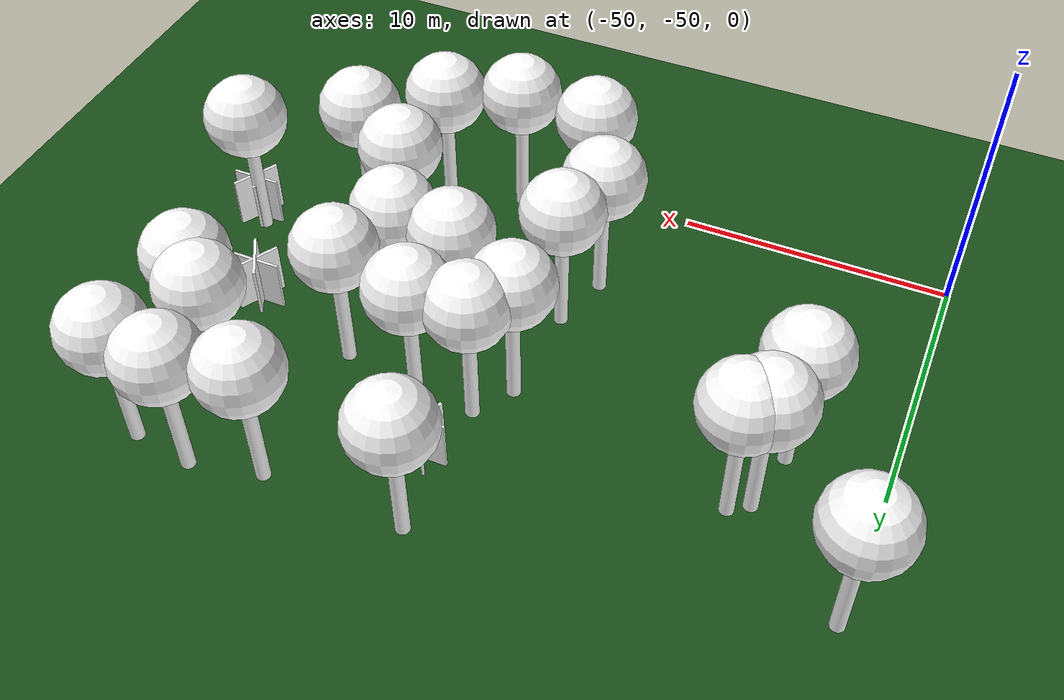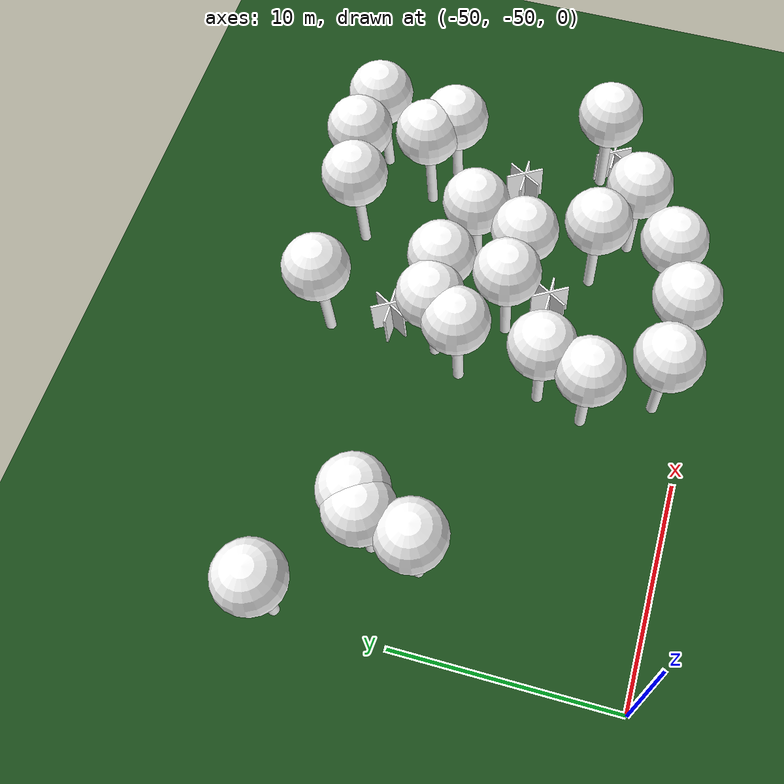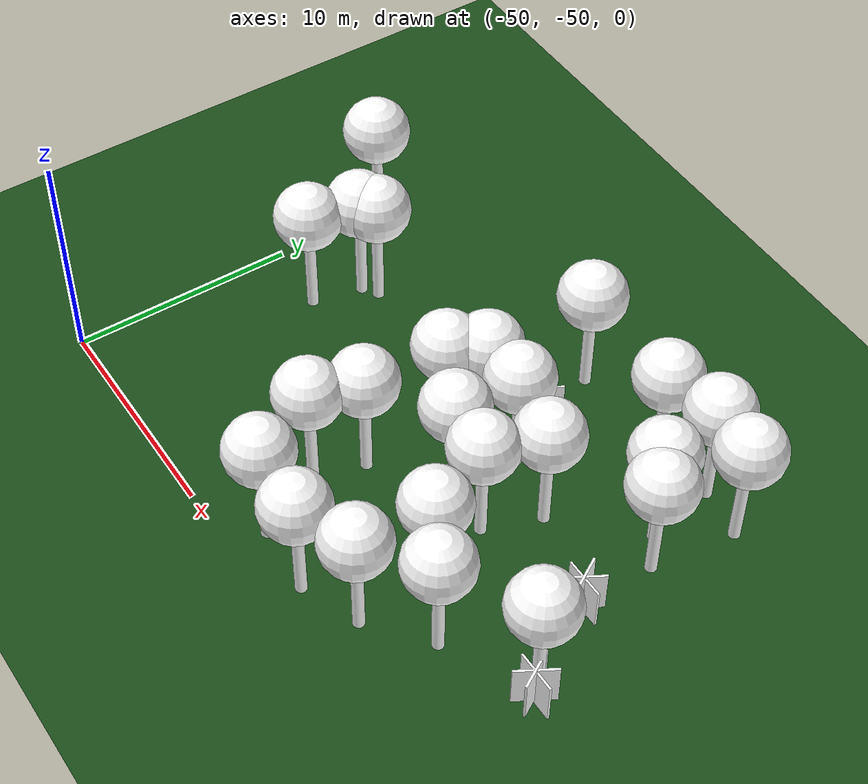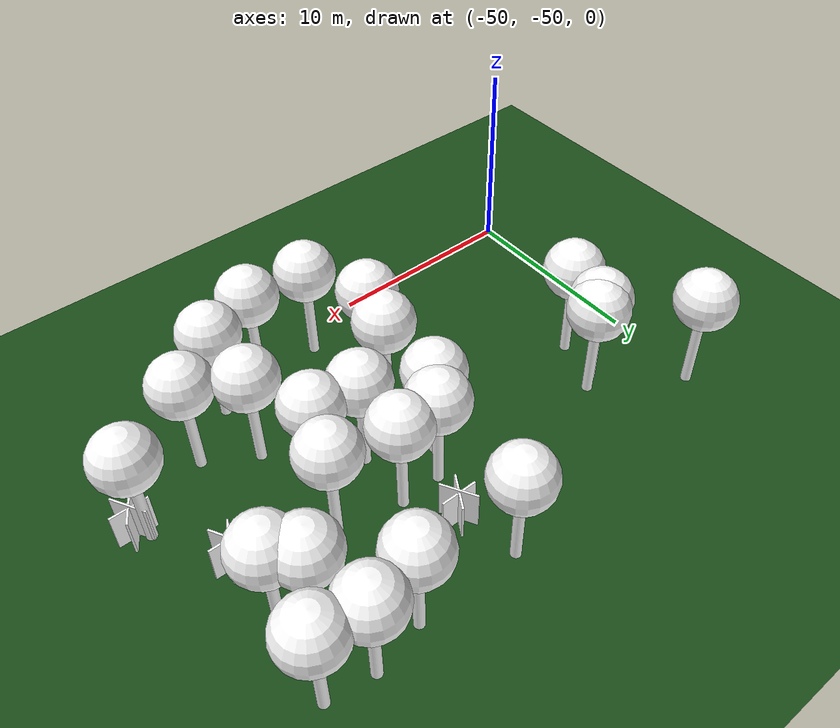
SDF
<sdf version="1.8">
 <world name="forest_world">
  <model name="fire_1">
   <pose>-33.11 -42.70 1.00 0 0 0.00</pose>
   <static>true</static>
   <link name="fire_link">
    <visual name="fire_1_fire_main_0">
     <geometry><box><size>1.80 0.10 2.00</size></box></geometry>
     <material>
      <ambient>0.7 0.35 0.0 1</ambient>
      <diffuse>1 1 1 1</diffuse>
      <specular>0 0 0 1</specular>
      <emissive>0 0 0 1</emissive>
      <pbr>
       <metal><albedo_map>textures/fire.png</albedo_map><metalness>0.0</metalness><roughness>0.6</roughness></metal>
      </pbr>
     </material>
     <transparency>0.0</transparency>
     <cast_shadows>false</cast_shadows>
    </visual>
    <visual name="fire_1_fire_60_1">
     <pose>0.00 0.00 0.10 0 0 1.05</pose>
     <geometry><box><size>1.80 0.10 2.00</size></box></geometry>
     <material>
      <ambient>0.7 0.35 0.0 1</ambient>
      <diffuse>1 1 1 1</diffuse>
      <specular>0 0 0 1</specular>
      <emissive>0 0 0 1</emissive>
      <pbr>
       <metal><albedo_map>textures/fire.png</albedo_map><metalness>0.0</metalness><roughness>0.6</roughness></metal>
      </pbr>
     </material>
     <transparency>0.0</transparency>
     <cast_shadows>false</cast_shadows>
    </visual>
    <visual name="fire_1_fire_120_2">
     <pose>0.00 0.00 0.20 0 0 2.09</pose>
     <geometry><box><size>1.80 0.10 2.00</size></box></geometry>
     <material>
      <ambient>0.7 0.35 0.0 1</ambient>
      <diffuse>1 1 1 1</diffuse>
      <specular>0 0 0 1</specular>
      <emissive>0 0 0 1</emissive>
      <pbr>
       <metal><albedo_map>textures/fire.png</albedo_map><metalness>0.0</metalness><roughness>0.6</roughness></metal>
      </pbr>
     </material>
     <transparency>0.0</transparency>
     <cast_shadows>false</cast_shadows>
    </visual>
    <light type="point" name="fire_1_light_0">
     <pose>0.40 0.00 0.50 0 0 0</pose>
     <diffuse>1.0 0.7 0.3 1</diffuse>
     <specular>1.0 0.8 0.3 1</specular>
     <intensity>2</intensity>
     <attenuation>
      <range>2</range>
      <constant>0.1</constant>
      <linear>0.05</linear>
      <quadratic>0.02</quadratic>
     </attenuation>
     <cast_shadows>false</cast_shadows>
    </light>
    <light type="point" name="fire_1_light_1">
     <pose>-0.20 0.35 0.50 0 0 0</pose>
     <diffuse>1.0 0.7 0.3 1</diffuse>
     <specular>1.0 0.8 0.3 1</specular>
     <intensity>2</intensity>
     <attenuation>
      <range>2</range>
      <constant>0.1</constant>
      <linear>0.05</linear>
      <quadratic>0.02</quadratic>
     </attenuation>
     <cast_shadows>false</cast_shadows>
    </light>
    <light type="point" name="fire_1_light_2">
     <pose>-0.20 -0.35 0.50 0 0 0</pose>
     <diffuse>1.0 0.7 0.3 1</diffuse>
     <specular>1.0 0.8 0.3 1</specular>
     <intensity>2</intensity>
     <attenuation>
      <range>2</range>
      <constant>0.1</constant>
      <linear>0.05</linear>
      <quadratic>0.02</quadratic>
     </attenuation>
     <cast_shadows>false</cast_shadows>
    </light>
   </link>
   <plugin filename="libignition-gazebo-pose-publisher-system.so" name="ignition::gazebo::systems::PosePublisher">
    <frame_id>world</frame_id>
    <publish_link_pose>true</publish_link_pose>
    <use_pose_vector_msg>true</use_pose_vector_msg>
    <static_publisher>true</static_publisher>
    <static_update_frequency>1</static_update_frequency>
   </plugin>
  </model>
  <model name="fire_22">
   <pose>-35.58 -35.81 1.00 0 0 0.00</pose>
   <static>true</static>
   <link name="fire_link">
    <visual name="fire_22_fire_main_0">
     <geometry><box><size>1.80 0.10 2.00</size></box></geometry>
     <material>
      <ambient>0.7 0.35 0.0 1</ambient>
      <diffuse>1 1 1 1</diffuse>
      <specular>0 0 0 1</specular>
      <emissive>0 0 0 1</emissive>
      <pbr>
       <metal><albedo_map>textures/fire.png</albedo_map><metalness>0.0</metalness><roughness>0.6</roughness></metal>
      </pbr>
     </material>
     <transparency>0.0</transparency>
     <cast_shadows>false</cast_shadows>
    </visual>
    <visual name="fire_22_fire_60_1">
     <pose>0.00 0.00 0.10 0 0 1.05</pose>
     <geometry><box><size>1.80 0.10 2.00</size></box></geometry>
     <material>
      <ambient>0.7 0.35 0.0 1</ambient>
      <diffuse>1 1 1 1</diffuse>
      <specular>0 0 0 1</specular>
      <emissive>0 0 0 1</emissive>
      <pbr>
       <metal><albedo_map>textures/fire.png</albedo_map><metalness>0.0</metalness><roughness>0.6</roughness></metal>
      </pbr>
     </material>
     <transparency>0.0</transparency>
     <cast_shadows>false</cast_shadows>
    </visual>
    <visual name="fire_22_fire_120_2">
     <pose>0.00 0.00 0.20 0 0 2.09</pose>
     <geometry><box><size>1.80 0.10 2.00</size></box></geometry>
     <material>
      <ambient>0.7 0.35 0.0 1</ambient>
      <diffuse>1 1 1 1</diffuse>
      <specular>0 0 0 1</specular>
      <emissive>0 0 0 1</emissive>
      <pbr>
       <metal><albedo_map>textures/fire.png</albedo_map><metalness>0.0</metalness><roughness>0.6</roughness></metal>
      </pbr>
     </material>
     <transparency>0.0</transparency>
     <cast_shadows>false</cast_shadows>
    </visual>
    <light type="point" name="fire_22_light_0">
     <pose>0.40 0.00 0.50 0 0 0</pose>
     <diffuse>1.0 0.7 0.3 1</diffuse>
     <specular>1.0 0.8 0.3 1</specular>
     <intensity>2</intensity>
     <attenuation>
      <range>2</range>
      <constant>0.1</constant>
      <linear>0.05</linear>
      <quadratic>0.02</quadratic>
     </attenuation>
     <cast_shadows>false</cast_shadows>
    </light>
    <light type="point" name="fire_22_light_1">
     <pose>-0.20 0.35 0.50 0 0 0</pose>
     <diffuse>1.0 0.7 0.3 1</diffuse>
     <specular>1.0 0.8 0.3 1</specular>
     <intensity>2</intensity>
     <attenuation>
      <range>2</range>
      <constant>0.1</constant>
      <linear>0.05</linear>
      <quadratic>0.02</quadratic>
     </attenuation>
     <cast_shadows>false</cast_shadows>
    </light>
    <light type="point" name="fire_22_light_2">
     <pose>-0.20 -0.35 0.50 0 0 0</pose>
     <diffuse>1.0 0.7 0.3 1</diffuse>
     <specular>1.0 0.8 0.3 1</specular>
     <intensity>2</intensity>
     <attenuation>
      <range>2</range>
      <constant>0.1</constant>
      <linear>0.05</linear>
      <quadratic>0.02</quadratic>
     </attenuation>
     <cast_shadows>false</cast_shadows>
    </light>
   </link>
   <plugin filename="libignition-gazebo-pose-publisher-system.so" name="ignition::gazebo::systems::PosePublisher">
    <frame_id>world</frame_id>
    <publish_link_pose>true</publish_link_pose>
    <use_pose_vector_msg>true</use_pose_vector_msg>
    <static_publisher>true</static_publisher>
    <static_update_frequency>1</static_update_frequency>
   </plugin>
  </model>
  <model name="fire_33">
   <pose>-26.98 -39.98 1.00 0 0 0.00</pose>
   <static>true</static>
   <link name="fire_link">
    <visual name="fire_33_fire_main_0">
     <geometry><box><size>1.80 0.10 2.00</size></box></geometry>
     <material>
      <ambient>0.7 0.35 0.0 1</ambient>
      <diffuse>1 1 1 1</diffuse>
      <specular>0 0 0 1</specular>
      <emissive>0 0 0 1</emissive>
      <pbr>
       <metal><albedo_map>textures/fire.png</albedo_map><metalness>0.0</metalness><roughness>0.6</roughness></metal>
      </pbr>
     </material>
     <transparency>0.0</transparency>
     <cast_shadows>false</cast_shadows>
    </visual>
    <visual name="fire_33_fire_60_1">
     <pose>0.00 0.00 0.10 0 0 1.05</pose>
     <geometry><box><size>1.80 0.10 2.00</size></box></geometry>
     <material>
      <ambient>0.7 0.35 0.0 1</ambient>
      <diffuse>1 1 1 1</diffuse>
      <specular>0 0 0 1</specular>
      <emissive>0 0 0 1</emissive>
      <pbr>
       <metal><albedo_map>textures/fire.png</albedo_map><metalness>0.0</metalness><roughness>0.6</roughness></metal>
      </pbr>
     </material>
     <transparency>0.0</transparency>
     <cast_shadows>false</cast_shadows>
    </visual>
    <visual name="fire_33_fire_120_2">
     <pose>0.00 0.00 0.20 0 0 2.09</pose>
     <geometry><box><size>1.80 0.10 2.00</size></box></geometry>
     <material>
      <ambient>0.7 0.35 0.0 1</ambient>
      <diffuse>1 1 1 1</diffuse>
      <specular>0 0 0 1</specular>
      <emissive>0 0 0 1</emissive>
      <pbr>
       <metal><albedo_map>textures/fire.png</albedo_map><metalness>0.0</metalness><roughness>0.6</roughness></metal>
      </pbr>
     </material>
     <transparency>0.0</transparency>
     <cast_shadows>false</cast_shadows>
    </visual>
    <light type="point" name="fire_33_light_0">
     <pose>0.40 0.00 0.50 0 0 0</pose>
     <diffuse>1.0 0.7 0.3 1</diffuse>
     <specular>1.0 0.8 0.3 1</specular>
     <intensity>2</intensity>
     <attenuation>
      <range>2</range>
      <constant>0.1</constant>
      <linear>0.05</linear>
      <quadratic>0.02</quadratic>
     </attenuation>
     <cast_shadows>false</cast_shadows>
    </light>
    <light type="point" name="fire_33_light_1">
     <pose>-0.20 0.35 0.50 0 0 0</pose>
     <diffuse>1.0 0.7 0.3 1</diffuse>
     <specular>1.0 0.8 0.3 1</specular>
     <intensity>2</intensity>
     <attenuation>
      <range>2</range>
      <constant>0.1</constant>
      <linear>0.05</linear>
      <quadratic>0.02</quadratic>
     </attenuation>
     <cast_shadows>false</cast_shadows>
    </light>
    <light type="point" name="fire_33_light_2">
     <pose>-0.20 -0.35 0.50 0 0 0</pose>
     <diffuse>1.0 0.7 0.3 1</diffuse>
     <specular>1.0 0.8 0.3 1</specular>
     <intensity>2</intensity>
     <attenuation>
      <range>2</range>
      <constant>0.1</constant>
      <linear>0.05</linear>
      <quadratic>0.02</quadratic>
     </attenuation>
     <cast_shadows>false</cast_shadows>
    </light>
   </link>
   <plugin filename="libignition-gazebo-pose-publisher-system.so" name="ignition::gazebo::systems::PosePublisher">
    <frame_id>world</frame_id>
    <publish_link_pose>true</publish_link_pose>
    <use_pose_vector_msg>true</use_pose_vector_msg>
    <static_publisher>true</static_publisher>
    <static_update_frequency>1</static_update_frequency>
   </plugin>
  </model>
  <model name="fire_34">
   <pose>-24.59 -43.90 1.00 0 0 0.00</pose>
   <static>true</static>
   <link name="fire_link">
    <visual name="fire_34_fire_main_0">
     <geometry><box><size>1.80 0.10 2.00</size></box></geometry>
     <material>
      <ambient>0.7 0.35 0.0 1</ambient>
      <diffuse>1 1 1 1</diffuse>
      <specular>0 0 0 1</specular>
      <emissive>0 0 0 1</emissive>
      <pbr>
       <metal><albedo_map>textures/fire.png</albedo_map><metalness>0.0</metalness><roughness>0.6</roughness></metal>
      </pbr>
     </material>
     <transparency>0.0</transparency>
     <cast_shadows>false</cast_shadows>
    </visual>
    <visual name="fire_34_fire_60_1">
     <pose>0.00 0.00 0.10 0 0 1.05</pose>
     <geometry><box><size>1.80 0.10 2.00</size></box></geometry>
     <material>
      <ambient>0.7 0.35 0.0 1</ambient>
      <diffuse>1 1 1 1</diffuse>
      <specular>0 0 0 1</specular>
      <emissive>0 0 0 1</emissive>
      <pbr>
       <metal><albedo_map>textures/fire.png</albedo_map><metalness>0.0</metalness><roughness>0.6</roughness></metal>
      </pbr>
     </material>
     <transparency>0.0</transparency>
     <cast_shadows>false</cast_shadows>
    </visual>
    <visual name="fire_34_fire_120_2">
     <pose>0.00 0.00 0.20 0 0 2.09</pose>
     <geometry><box><size>1.80 0.10 2.00</size></box></geometry>
     <material>
      <ambient>0.7 0.35 0.0 1</ambient>
      <diffuse>1 1 1 1</diffuse>
      <specular>0 0 0 1</specular>
      <emissive>0 0 0 1</emissive>
      <pbr>
       <metal><albedo_map>textures/fire.png</albedo_map><metalness>0.0</metalness><roughness>0.6</roughness></metal>
      </pbr>
     </material>
     <transparency>0.0</transparency>
     <cast_shadows>false</cast_shadows>
    </visual>
    <light type="point" name="fire_34_light_0">
     <pose>0.40 0.00 0.50 0 0 0</pose>
     <diffuse>1.0 0.7 0.3 1</diffuse>
     <specular>1.0 0.8 0.3 1</specular>
     <intensity>2</intensity>
     <attenuation>
      <range>2</range>
      <constant>0.1</constant>
      <linear>0.05</linear>
      <quadratic>0.02</quadratic>
     </attenuation>
     <cast_shadows>false</cast_shadows>
    </light>
    <light type="point" name="fire_34_light_1">
     <pose>-0.20 0.35 0.50 0 0 0</pose>
     <diffuse>1.0 0.7 0.3 1</diffuse>
     <specular>1.0 0.8 0.3 1</specular>
     <intensity>2</intensity>
     <attenuation>
      <range>2</range>
      <constant>0.1</constant>
      <linear>0.05</linear>
      <quadratic>0.02</quadratic>
     </attenuation>
     <cast_shadows>false</cast_shadows>
    </light>
    <light type="point" name="fire_34_light_2">
     <pose>-0.20 -0.35 0.50 0 0 0</pose>
     <diffuse>1.0 0.7 0.3 1</diffuse>
     <specular>1.0 0.8 0.3 1</specular>
     <intensity>2</intensity>
     <attenuation>
      <range>2</range>
      <constant>0.1</constant>
      <linear>0.05</linear>
      <quadratic>0.02</quadratic>
     </attenuation>
     <cast_shadows>false</cast_shadows>
    </light>
   </link>
   <plugin filename="libignition-gazebo-pose-publisher-system.so" name="ignition::gazebo::systems::PosePublisher">
    <frame_id>world</frame_id>
    <publish_link_pose>true</publish_link_pose>
    <use_pose_vector_msg>true</use_pose_vector_msg>
    <static_publisher>true</static_publisher>
    <static_update_frequency>1</static_update_frequency>
   </plugin>
  </model>
  <model name="tree_simple481">
   <static>1</static>
   <link name="link">
    <pose>0 0 0.1 0 -0 0</pose>
    <collision name="collision_trunk">
     <pose>0 0 2 0 -0 0</pose>
     <geometry><cylinder><radius>0.25</radius><length>4</length></cylinder></geometry>
    </collision>
    <collision name="collision_treetop">
     <pose>0 0 5.2 0 -0 0</pose>
     <geometry><sphere><radius>1.5</radius></sphere></geometry>
    </collision>
    <visual name="trunk">
     <pose>0 0 2 0 -0 0</pose>
     <geometry><cylinder><radius>0.25</radius><length>4</length></cylinder></geometry>
     <material>
      <ambient>0.5 0.5 0.5 1</ambient>
      <diffuse>1.0 1.0 1.0 1</diffuse>
      <specular>0.0 0.0 0.0 1</specular>
      <pbr>
       <metal>
        <albedo_map>../worlds/textures/tree_simple_trunk.jpg</albedo_map>
        <metalness>0.0</metalness>
        <roughness>0.8</roughness>
       </metal>
      </pbr>
     </material>
    </visual>
    <visual name="treetop">
     <pose>0 0 5.2 0 -0 0</pose>
     <geometry><sphere><radius>1.5</radius></sphere></geometry>
     <material>
      <ambient>0.5 0.5 0.5 1</ambient>
      <diffuse>1.0 1.0 1.0 1</diffuse>
      <specular>0.0 0.0 0.0 1</specular>
      <pbr>
       <metal>
        <albedo_map>../worlds/textures/tree_simple_treetop.jpg</albedo_map>
        <metalness>0.0</metalness>
        <roughness>0.9</roughness>
       </metal>
      </pbr>
     </material>
    </visual>
   </link>
   <pose>-37.2553351017 -39.4739685818 0 0 -0 0</pose>
  </model>
  <model name="tree_simple438">
   <static>1</static>
   <link name="link">
    <pose>0 0 0.1 0 -0 0</pose>
    <collision name="collision_trunk">
     <pose>0 0 2 0 -0 0</pose>
     <geometry><cylinder><radius>0.25</radius><length>4</length></cylinder></geometry>
    </collision>
    <collision name="collision_treetop">
     <pose>0 0 5.2 0 -0 0</pose>
     <geometry><sphere><radius>1.5</radius></sphere></geometry>
    </collision>
    <visual name="trunk">
     <pose>0 0 2 0 -0 0</pose>
     <geometry><cylinder><radius>0.25</radius><length>4</length></cylinder></geometry>
     <material>
      <ambient>0.5 0.5 0.5 1</ambient>
      <diffuse>1.0 1.0 1.0 1</diffuse>
      <specular>0.0 0.0 0.0 1</specular>
      <pbr>
       <metal>
        <albedo_map>../worlds/textures/tree_simple_trunk.jpg</albedo_map>
        <metalness>0.0</metalness>
        <roughness>0.8</roughness>
       </metal>
      </pbr>
     </material>
    </visual>
    <visual name="treetop">
     <pose>0 0 5.2 0 -0 0</pose>
     <geometry><sphere><radius>1.5</radius></sphere></geometry>
     <material>
      <ambient>0.5 0.5 0.5 1</ambient>
      <diffuse>1.0 1.0 1.0 1</diffuse>
      <specular>0.0 0.0 0.0 1</specular>
      <pbr>
       <metal>
        <albedo_map>../worlds/textures/tree_simple_treetop.jpg</albedo_map>
        <metalness>0.0</metalness>
        <roughness>0.9</roughness>
       </metal>
      </pbr>
     </material>
    </visual>
   </link>
   <pose>-34.2898013361 -38.0039942016 0 0 -0 0</pose>
  </model>
  <model name="tree_simple433">
   <static>1</static>
   <link name="link">
    <pose>0 0 0.1 0 -0 0</pose>
    <collision name="collision_trunk">
     <pose>0 0 2 0 -0 0</pose>
     <geometry><cylinder><radius>0.25</radius><length>4</length></cylinder></geometry>
    </collision>
    <collision name="collision_treetop">
     <pose>0 0 5.2 0 -0 0</pose>
     <geometry><sphere><radius>1.5</radius></sphere></geometry>
    </collision>
    <visual name="trunk">
     <pose>0 0 2 0 -0 0</pose>
     <geometry><cylinder><radius>0.25</radius><length>4</length></cylinder></geometry>
     <material>
      <ambient>0.5 0.5 0.5 1</ambient>
      <diffuse>1.0 1.0 1.0 1</diffuse>
      <specular>0.0 0.0 0.0 1</specular>
      <pbr>
       <metal>
        <albedo_map>../worlds/textures/tree_simple_trunk.jpg</albedo_map>
        <metalness>0.0</metalness>
        <roughness>0.8</roughness>
       </metal>
      </pbr>
     </material>
    </visual>
    <visual name="treetop">
     <pose>0 0 5.2 0 -0 0</pose>
     <geometry><sphere><radius>1.5</radius></sphere></geometry>
     <material>
      <ambient>0.5 0.5 0.5 1</ambient>
      <diffuse>1.0 1.0 1.0 1</diffuse>
      <specular>0.0 0.0 0.0 1</specular>
      <pbr>
       <metal>
        <albedo_map>../worlds/textures/tree_simple_treetop.jpg</albedo_map>
        <metalness>0.0</metalness>
        <roughness>0.9</roughness>
       </metal>
      </pbr>
     </material>
    </visual>
   </link>
   <pose>-27.0163612707 -36.6075625798 0 0 -0 0</pose>
  </model>
  <model name="tree_simple416">
   <static>1</static>
   <link name="link">
    <pose>0 0 0.1 0 -0 0</pose>
    <collision name="collision_trunk">
     <pose>0 0 2 0 -0 0</pose>
     <geometry><cylinder><radius>0.25</radius><length>4</length></cylinder></geometry>
    </collision>
    <collision name="collision_treetop">
     <pose>0 0 5.2 0 -0 0</pose>
     <geometry><sphere><radius>1.5</radius></sphere></geometry>
    </collision>
    <visual name="trunk">
     <pose>0 0 2 0 -0 0</pose>
     <geometry><cylinder><radius>0.25</radius><length>4</length></cylinder></geometry>
     <material>
      <ambient>0.5 0.5 0.5 1</ambient>
      <diffuse>1.0 1.0 1.0 1</diffuse>
      <specular>0.0 0.0 0.0 1</specular>
      <pbr>
       <metal>
        <albedo_map>../worlds/textures/tree_simple_trunk.jpg</albedo_map>
        <metalness>0.0</metalness>
        <roughness>0.8</roughness>
       </metal>
      </pbr>
     </material>
    </visual>
    <visual name="treetop">
     <pose>0 0 5.2 0 -0 0</pose>
     <geometry><sphere><radius>1.5</radius></sphere></geometry>
     <material>
      <ambient>0.5 0.5 0.5 1</ambient>
      <diffuse>1.0 1.0 1.0 1</diffuse>
      <specular>0.0 0.0 0.0 1</specular>
      <pbr>
       <metal>
        <albedo_map>../worlds/textures/tree_simple_treetop.jpg</albedo_map>
        <metalness>0.0</metalness>
        <roughness>0.9</roughness>
       </metal>
      </pbr>
     </material>
    </visual>
   </link>
   <pose>-31.2795871631 -38.7286210433 0 0 -0 0</pose>
  </model>
  <model name="tree_simple411">
   <static>1</static>
   <link name="link">
    <pose>0 0 0.1 0 -0 0</pose>
    <collision name="collision_trunk">
     <pose>0 0 2 0 -0 0</pose>
     <geometry><cylinder><radius>0.25</radius><length>4</length></cylinder></geometry>
    </collision>
    <collision name="collision_treetop">
     <pose>0 0 5.2 0 -0 0</pose>
     <geometry><sphere><radius>1.5</radius></sphere></geometry>
    </collision>
    <visual name="trunk">
     <pose>0 0 2 0 -0 0</pose>
     <geometry><cylinder><radius>0.25</radius><length>4</length></cylinder></geometry>
     <material>
      <ambient>0.5 0.5 0.5 1</ambient>
      <diffuse>1.0 1.0 1.0 1</diffuse>
      <specular>0.0 0.0 0.0 1</specular>
      <pbr>
       <metal>
        <albedo_map>../worlds/textures/tree_simple_trunk.jpg</albedo_map>
        <metalness>0.0</metalness>
        <roughness>0.8</roughness>
       </metal>
      </pbr>
     </material>
    </visual>
    <visual name="treetop">
     <pose>0 0 5.2 0 -0 0</pose>
     <geometry><sphere><radius>1.5</radius></sphere></geometry>
     <material>
      <ambient>0.5 0.5 0.5 1</ambient>
      <diffuse>1.0 1.0 1.0 1</diffuse>
      <specular>0.0 0.0 0.0 1</specular>
      <pbr>
       <metal>
        <albedo_map>../worlds/textures/tree_simple_treetop.jpg</albedo_map>
        <metalness>0.0</metalness>
        <roughness>0.9</roughness>
       </metal>
      </pbr>
     </material>
    </visual>
   </link>
   <pose>-32.1703266052 -41.1753069034 0 0 -0 0</pose>
  </model>
  <model name="tree_simple407">
   <static>1</static>
   <link name="link">
    <pose>0 0 0.1 0 -0 0</pose>
    <collision name="collision_trunk">
     <pose>0 0 2 0 -0 0</pose>
     <geometry><cylinder><radius>0.25</radius><length>4</length></cylinder></geometry>
    </collision>
    <collision name="collision_treetop">
     <pose>0 0 5.2 0 -0 0</pose>
     <geometry><sphere><radius>1.5</radius></sphere></geometry>
    </collision>
    <visual name="trunk">
     <pose>0 0 2 0 -0 0</pose>
     <geometry><cylinder><radius>0.25</radius><length>4</length></cylinder></geometry>
     <material>
      <ambient>0.5 0.5 0.5 1</ambient>
      <diffuse>1.0 1.0 1.0 1</diffuse>
      <specular>0.0 0.0 0.0 1</specular>
      <pbr>
       <metal>
        <albedo_map>../worlds/textures/tree_simple_trunk.jpg</albedo_map>
        <metalness>0.0</metalness>
        <roughness>0.8</roughness>
       </metal>
      </pbr>
     </material>
    </visual>
    <visual name="treetop">
     <pose>0 0 5.2 0 -0 0</pose>
     <geometry><sphere><radius>1.5</radius></sphere></geometry>
     <material>
      <ambient>0.5 0.5 0.5 1</ambient>
      <diffuse>1.0 1.0 1.0 1</diffuse>
      <specular>0.0 0.0 0.0 1</specular>
      <pbr>
       <metal>
        <albedo_map>../worlds/textures/tree_simple_treetop.jpg</albedo_map>
        <metalness>0.0</metalness>
        <roughness>0.9</roughness>
       </metal>
      </pbr>
     </material>
    </visual>
   </link>
   <pose>-31.2268758756 -33.0617209784 0 0 -0 0</pose>
  </model>
  <model name="tree_simple404">
   <static>1</static>
   <link name="link">
    <pose>0 0 0.1 0 -0 0</pose>
    <collision name="collision_trunk">
     <pose>0 0 2 0 -0 0</pose>
     <geometry><cylinder><radius>0.25</radius><length>4</length></cylinder></geometry>
    </collision>
    <collision name="collision_treetop">
     <pose>0 0 5.2 0 -0 0</pose>
     <geometry><sphere><radius>1.5</radius></sphere></geometry>
    </collision>
    <visual name="trunk">
     <pose>0 0 2 0 -0 0</pose>
     <geometry><cylinder><radius>0.25</radius><length>4</length></cylinder></geometry>
     <material>
      <ambient>0.5 0.5 0.5 1</ambient>
      <diffuse>1.0 1.0 1.0 1</diffuse>
      <specular>0.0 0.0 0.0 1</specular>
      <pbr>
       <metal>
        <albedo_map>../worlds/textures/tree_simple_trunk.jpg</albedo_map>
        <metalness>0.0</metalness>
        <roughness>0.8</roughness>
       </metal>
      </pbr>
     </material>
    </visual>
    <visual name="treetop">
     <pose>0 0 5.2 0 -0 0</pose>
     <geometry><sphere><radius>1.5</radius></sphere></geometry>
     <material>
      <ambient>0.5 0.5 0.5 1</ambient>
      <diffuse>1.0 1.0 1.0 1</diffuse>
      <specular>0.0 0.0 0.0 1</specular>
      <pbr>
       <metal>
        <albedo_map>../worlds/textures/tree_simple_treetop.jpg</albedo_map>
        <metalness>0.0</metalness>
        <roughness>0.9</roughness>
       </metal>
      </pbr>
     </material>
    </visual>
   </link>
   <pose>-45.4192895763 -37.6687183978 0 0 -0 0</pose>
  </model>
  <model name="tree_simple357">
   <static>1</static>
   <link name="link">
    <pose>0 0 0.1 0 -0 0</pose>
    <collision name="collision_trunk">
     <pose>0 0 2 0 -0 0</pose>
     <geometry><cylinder><radius>0.25</radius><length>4</length></cylinder></geometry>
    </collision>
    <collision name="collision_treetop">
     <pose>0 0 5.2 0 -0 0</pose>
     <geometry><sphere><radius>1.5</radius></sphere></geometry>
    </collision>
    <visual name="trunk">
     <pose>0 0 2 0 -0 0</pose>
     <geometry><cylinder><radius>0.25</radius><length>4</length></cylinder></geometry>
     <material>
      <ambient>0.5 0.5 0.5 1</ambient>
      <diffuse>1.0 1.0 1.0 1</diffuse>
      <specular>0.0 0.0 0.0 1</specular>
      <pbr>
       <metal>
        <albedo_map>../worlds/textures/tree_simple_trunk.jpg</albedo_map>
        <metalness>0.0</metalness>
        <roughness>0.8</roughness>
       </metal>
      </pbr>
     </material>
    </visual>
    <visual name="treetop">
     <pose>0 0 5.2 0 -0 0</pose>
     <geometry><sphere><radius>1.5</radius></sphere></geometry>
     <material>
      <ambient>0.5 0.5 0.5 1</ambient>
      <diffuse>1.0 1.0 1.0 1</diffuse>
      <specular>0.0 0.0 0.0 1</specular>
      <pbr>
       <metal>
        <albedo_map>../worlds/textures/tree_simple_treetop.jpg</albedo_map>
        <metalness>0.0</metalness>
        <roughness>0.9</roughness>
       </metal>
      </pbr>
     </material>
    </visual>
   </link>
   <pose>-28.5404779553 -45.5660911112 0 0 -0 0</pose>
  </model>
  <model name="tree_simple348">
   <static>1</static>
   <link name="link">
    <pose>0 0 0.1 0 -0 0</pose>
    <collision name="collision_trunk">
     <pose>0 0 2 0 -0 0</pose>
     <geometry><cylinder><radius>0.25</radius><length>4</length></cylinder></geometry>
    </collision>
    <collision name="collision_treetop">
     <pose>0 0 5.2 0 -0 0</pose>
     <geometry><sphere><radius>1.5</radius></sphere></geometry>
    </collision>
    <visual name="trunk">
     <pose>0 0 2 0 -0 0</pose>
     <geometry><cylinder><radius>0.25</radius><length>4</length></cylinder></geometry>
     <material>
      <ambient>0.5 0.5 0.5 1</ambient>
      <diffuse>1.0 1.0 1.0 1</diffuse>
      <specular>0.0 0.0 0.0 1</specular>
      <pbr>
       <metal>
        <albedo_map>../worlds/textures/tree_simple_trunk.jpg</albedo_map>
        <metalness>0.0</metalness>
        <roughness>0.8</roughness>
       </metal>
      </pbr>
     </material>
    </visual>
    <visual name="treetop">
     <pose>0 0 5.2 0 -0 0</pose>
     <geometry><sphere><radius>1.5</radius></sphere></geometry>
     <material>
      <ambient>0.5 0.5 0.5 1</ambient>
      <diffuse>1.0 1.0 1.0 1</diffuse>
      <specular>0.0 0.0 0.0 1</specular>
      <pbr>
       <metal>
        <albedo_map>../worlds/textures/tree_simple_treetop.jpg</albedo_map>
        <metalness>0.0</metalness>
        <roughness>0.9</roughness>
       </metal>
      </pbr>
     </material>
    </visual>
   </link>
   <pose>-31.0103174471 -47.5688671712 0 0 -0 0</pose>
  </model>
  <model name="tree_simple250">
   <static>1</static>
   <link name="link">
    <pose>0 0 0.1 0 -0 0</pose>
    <collision name="collision_trunk">
     <pose>0 0 2 0 -0 0</pose>
     <geometry><cylinder><radius>0.25</radius><length>4</length></cylinder></geometry>
    </collision>
    <collision name="collision_treetop">
     <pose>0 0 5.2 0 -0 0</pose>
     <geometry><sphere><radius>1.5</radius></sphere></geometry>
    </collision>
    <visual name="trunk">
     <pose>0 0 2 0 -0 0</pose>
     <geometry><cylinder><radius>0.25</radius><length>4</length></cylinder></geometry>
     <material>
      <ambient>0.5 0.5 0.5 1</ambient>
      <diffuse>1.0 1.0 1.0 1</diffuse>
      <specular>0.0 0.0 0.0 1</specular>
      <pbr>
       <metal>
        <albedo_map>../worlds/textures/tree_simple_trunk.jpg</albedo_map>
        <metalness>0.0</metalness>
        <roughness>0.8</roughness>
       </metal>
      </pbr>
     </material>
    </visual>
    <visual name="treetop">
     <pose>0 0 5.2 0 -0 0</pose>
     <geometry><sphere><radius>1.5</radius></sphere></geometry>
     <material>
      <ambient>0.5 0.5 0.5 1</ambient>
      <diffuse>1.0 1.0 1.0 1</diffuse>
      <specular>0.0 0.0 0.0 1</specular>
      <pbr>
       <metal>
        <albedo_map>../worlds/textures/tree_simple_treetop.jpg</albedo_map>
        <metalness>0.0</metalness>
        <roughness>0.9</roughness>
       </metal>
      </pbr>
     </material>
    </visual>
   </link>
   <pose>-33.6030138898 -48.597626204 0 0 -0 0</pose>
  </model>
  <model name="tree_simple241">
   <static>1</static>
   <link name="link">
    <pose>0 0 0.1 0 -0 0</pose>
    <collision name="collision_trunk">
     <pose>0 0 2 0 -0 0</pose>
     <geometry><cylinder><radius>0.25</radius><length>4</length></cylinder></geometry>
    </collision>
    <collision name="collision_treetop">
     <pose>0 0 5.2 0 -0 0</pose>
     <geometry><sphere><radius>1.5</radius></sphere></geometry>
    </collision>
    <visual name="trunk">
     <pose>0 0 2 0 -0 0</pose>
     <geometry><cylinder><radius>0.25</radius><length>4</length></cylinder></geometry>
     <material>
      <ambient>0.5 0.5 0.5 1</ambient>
      <diffuse>1.0 1.0 1.0 1</diffuse>
      <specular>0.0 0.0 0.0 1</specular>
      <pbr>
       <metal>
        <albedo_map>../worlds/textures/tree_simple_trunk.jpg</albedo_map>
        <metalness>0.0</metalness>
        <roughness>0.8</roughness>
       </metal>
      </pbr>
     </material>
    </visual>
    <visual name="treetop">
     <pose>0 0 5.2 0 -0 0</pose>
     <geometry><sphere><radius>1.5</radius></sphere></geometry>
     <material>
      <ambient>0.5 0.5 0.5 1</ambient>
      <diffuse>1.0 1.0 1.0 1</diffuse>
      <specular>0.0 0.0 0.0 1</specular>
      <pbr>
       <metal>
        <albedo_map>../worlds/textures/tree_simple_treetop.jpg</albedo_map>
        <metalness>0.0</metalness>
        <roughness>0.9</roughness>
       </metal>
      </pbr>
     </material>
    </visual>
   </link>
   <pose>-37.439891657 -43.2397532509 0 0 -0 0</pose>
  </model>
  <model name="tree_simple198">
   <static>1</static>
   <link name="link">
    <pose>0 0 0.1 0 -0 0</pose>
    <collision name="collision_trunk">
     <pose>0 0 2 0 -0 0</pose>
     <geometry><cylinder><radius>0.25</radius><length>4</length></cylinder></geometry>
    </collision>
    <collision name="collision_treetop">
     <pose>0 0 5.2 0 -0 0</pose>
     <geometry><sphere><radius>1.5</radius></sphere></geometry>
    </collision>
    <visual name="trunk">
     <pose>0 0 2 0 -0 0</pose>
     <geometry><cylinder><radius>0.25</radius><length>4</length></cylinder></geometry>
     <material>
      <ambient>0.5 0.5 0.5 1</ambient>
      <diffuse>1.0 1.0 1.0 1</diffuse>
      <specular>0.0 0.0 0.0 1</specular>
      <pbr>
       <metal>
        <albedo_map>../worlds/textures/tree_simple_trunk.jpg</albedo_map>
        <metalness>0.0</metalness>
        <roughness>0.8</roughness>
       </metal>
      </pbr>
     </material>
    </visual>
    <visual name="treetop">
     <pose>0 0 5.2 0 -0 0</pose>
     <geometry><sphere><radius>1.5</radius></sphere></geometry>
     <material>
      <ambient>0.5 0.5 0.5 1</ambient>
      <diffuse>1.0 1.0 1.0 1</diffuse>
      <specular>0.0 0.0 0.0 1</specular>
      <pbr>
       <metal>
        <albedo_map>../worlds/textures/tree_simple_treetop.jpg</albedo_map>
        <metalness>0.0</metalness>
        <roughness>0.9</roughness>
       </metal>
      </pbr>
     </material>
    </visual>
   </link>
   <pose>-28.1666068892 -35.6025820701 0 0 -0 0</pose>
  </model>
  <model name="tree_simple193">
   <static>1</static>
   <link name="link">
    <pose>0 0 0.1 0 -0 0</pose>
    <collision name="collision_trunk">
     <pose>0 0 2 0 -0 0</pose>
     <geometry><cylinder><radius>0.25</radius><length>4</length></cylinder></geometry>
    </collision>
    <collision name="collision_treetop">
     <pose>0 0 5.2 0 -0 0</pose>
     <geometry><sphere><radius>1.5</radius></sphere></geometry>
    </collision>
    <visual name="trunk">
     <pose>0 0 2 0 -0 0</pose>
     <geometry><cylinder><radius>0.25</radius><length>4</length></cylinder></geometry>
     <material>
      <ambient>0.5 0.5 0.5 1</ambient>
      <diffuse>1.0 1.0 1.0 1</diffuse>
      <specular>0.0 0.0 0.0 1</specular>
      <pbr>
       <metal>
        <albedo_map>../worlds/textures/tree_simple_trunk.jpg</albedo_map>
        <metalness>0.0</metalness>
        <roughness>0.8</roughness>
       </metal>
      </pbr>
     </material>
    </visual>
    <visual name="treetop">
     <pose>0 0 5.2 0 -0 0</pose>
     <geometry><sphere><radius>1.5</radius></sphere></geometry>
     <material>
      <ambient>0.5 0.5 0.5 1</ambient>
      <diffuse>1.0 1.0 1.0 1</diffuse>
      <specular>0.0 0.0 0.0 1</specular>
      <pbr>
       <metal>
        <albedo_map>../worlds/textures/tree_simple_treetop.jpg</albedo_map>
        <metalness>0.0</metalness>
        <roughness>0.9</roughness>
       </metal>
      </pbr>
     </material>
    </visual>
   </link>
   <pose>-38.0891263237 -45.387736402 0 0 -0 0</pose>
  </model>
  <model name="tree_simple176">
   <static>1</static>
   <link name="link">
    <pose>0 0 0.1 0 -0 0</pose>
    <collision name="collision_trunk">
     <pose>0 0 2 0 -0 0</pose>
     <geometry><cylinder><radius>0.25</radius><length>4</length></cylinder></geometry>
    </collision>
    <collision name="collision_treetop">
     <pose>0 0 5.2 0 -0 0</pose>
     <geometry><sphere><radius>1.5</radius></sphere></geometry>
    </collision>
    <visual name="trunk">
     <pose>0 0 2 0 -0 0</pose>
     <geometry><cylinder><radius>0.25</radius><length>4</length></cylinder></geometry>
     <material>
      <ambient>0.5 0.5 0.5 1</ambient>
      <diffuse>1.0 1.0 1.0 1</diffuse>
      <specular>0.0 0.0 0.0 1</specular>
      <pbr>
       <metal>
        <albedo_map>../worlds/textures/tree_simple_trunk.jpg</albedo_map>
        <metalness>0.0</metalness>
        <roughness>0.8</roughness>
       </metal>
      </pbr>
     </material>
    </visual>
    <visual name="treetop">
     <pose>0 0 5.2 0 -0 0</pose>
     <geometry><sphere><radius>1.5</radius></sphere></geometry>
     <material>
      <ambient>0.5 0.5 0.5 1</ambient>
      <diffuse>1.0 1.0 1.0 1</diffuse>
      <specular>0.0 0.0 0.0 1</specular>
      <pbr>
       <metal>
        <albedo_map>../worlds/textures/tree_simple_treetop.jpg</albedo_map>
        <metalness>0.0</metalness>
        <roughness>0.9</roughness>
       </metal>
      </pbr>
     </material>
    </visual>
   </link>
   <pose>-34.4242902166 -40.9558999471 0 0 -0 0</pose>
  </model>
  <model name="tree_simple172">
   <static>1</static>
   <link name="link">
    <pose>0 0 0.1 0 -0 0</pose>
    <collision name="collision_trunk">
     <pose>0 0 2 0 -0 0</pose>
     <geometry><cylinder><radius>0.25</radius><length>4</length></cylinder></geometry>
    </collision>
    <collision name="collision_treetop">
     <pose>0 0 5.2 0 -0 0</pose>
     <geometry><sphere><radius>1.5</radius></sphere></geometry>
    </collision>
    <visual name="trunk">
     <pose>0 0 2 0 -0 0</pose>
     <geometry><cylinder><radius>0.25</radius><length>4</length></cylinder></geometry>
     <material>
      <ambient>0.5 0.5 0.5 1</ambient>
      <diffuse>1.0 1.0 1.0 1</diffuse>
      <specular>0.0 0.0 0.0 1</specular>
      <pbr>
       <metal>
        <albedo_map>../worlds/textures/tree_simple_trunk.jpg</albedo_map>
        <metalness>0.0</metalness>
        <roughness>0.8</roughness>
       </metal>
      </pbr>
     </material>
    </visual>
    <visual name="treetop">
     <pose>0 0 5.2 0 -0 0</pose>
     <geometry><sphere><radius>1.5</radius></sphere></geometry>
     <material>
      <ambient>0.5 0.5 0.5 1</ambient>
      <diffuse>1.0 1.0 1.0 1</diffuse>
      <specular>0.0 0.0 0.0 1</specular>
      <pbr>
       <metal>
        <albedo_map>../worlds/textures/tree_simple_treetop.jpg</albedo_map>
        <metalness>0.0</metalness>
        <roughness>0.9</roughness>
       </metal>
      </pbr>
     </material>
    </visual>
   </link>
   <pose>-36.3388025574 -38.096874475 0 0 -0 0</pose>
  </model>
  <model name="tree_simple129">
   <static>1</static>
   <link name="link">
    <pose>0 0 0.1 0 -0 0</pose>
    <collision name="collision_trunk">
     <pose>0 0 2 0 -0 0</pose>
     <geometry><cylinder><radius>0.25</radius><length>4</length></cylinder></geometry>
    </collision>
    <collision name="collision_treetop">
     <pose>0 0 5.2 0 -0 0</pose>
     <geometry><sphere><radius>1.5</radius></sphere></geometry>
    </collision>
    <visual name="trunk">
     <pose>0 0 2 0 -0 0</pose>
     <geometry><cylinder><radius>0.25</radius><length>4</length></cylinder></geometry>
     <material>
      <ambient>0.5 0.5 0.5 1</ambient>
      <diffuse>1.0 1.0 1.0 1</diffuse>
      <specular>0.0 0.0 0.0 1</specular>
      <pbr>
       <metal>
        <albedo_map>../worlds/textures/tree_simple_trunk.jpg</albedo_map>
        <metalness>0.0</metalness>
        <roughness>0.8</roughness>
       </metal>
      </pbr>
     </material>
    </visual>
    <visual name="treetop">
     <pose>0 0 5.2 0 -0 0</pose>
     <geometry><sphere><radius>1.5</radius></sphere></geometry>
     <material>
      <ambient>0.5 0.5 0.5 1</ambient>
      <diffuse>1.0 1.0 1.0 1</diffuse>
      <specular>0.0 0.0 0.0 1</specular>
      <pbr>
       <metal>
        <albedo_map>../worlds/textures/tree_simple_treetop.jpg</albedo_map>
        <metalness>0.0</metalness>
        <roughness>0.9</roughness>
       </metal>
      </pbr>
     </material>
    </visual>
   </link>
   <pose>-46.082766629 -38.1150560833 0 0 -0 0</pose>
  </model>
  <model name="tree_simple83">
   <static>1</static>
   <link name="link">
    <pose>0 0 0.1 0 -0 0</pose>
    <collision name="collision_trunk">
     <pose>0 0 2 0 -0 0</pose>
     <geometry><cylinder><radius>0.25</radius><length>4</length></cylinder></geometry>
    </collision>
    <collision name="collision_treetop">
     <pose>0 0 5.2 0 -0 0</pose>
     <geometry><sphere><radius>1.5</radius></sphere></geometry>
    </collision>
    <visual name="trunk">
     <pose>0 0 2 0 -0 0</pose>
     <geometry><cylinder><radius>0.25</radius><length>4</length></cylinder></geometry>
     <material>
      <ambient>0.5 0.5 0.5 1</ambient>
      <diffuse>1.0 1.0 1.0 1</diffuse>
      <specular>0.0 0.0 0.0 1</specular>
      <pbr>
       <metal>
        <albedo_map>../worlds/textures/tree_simple_trunk.jpg</albedo_map>
        <metalness>0.0</metalness>
        <roughness>0.8</roughness>
       </metal>
      </pbr>
     </material>
    </visual>
    <visual name="treetop">
     <pose>0 0 5.2 0 -0 0</pose>
     <geometry><sphere><radius>1.5</radius></sphere></geometry>
     <material>
      <ambient>0.5 0.5 0.5 1</ambient>
      <diffuse>1.0 1.0 1.0 1</diffuse>
      <specular>0.0 0.0 0.0 1</specular>
      <pbr>
       <metal>
        <albedo_map>../worlds/textures/tree_simple_treetop.jpg</albedo_map>
        <metalness>0.0</metalness>
        <roughness>0.9</roughness>
       </metal>
      </pbr>
     </material>
    </visual>
   </link>
   <pose>-49.6712926958 -35.0160914231 0 0 -0 0</pose>
  </model>
  <model name="tree_simple71">
   <static>1</static>
   <link name="link">
    <pose>0 0 0.1 0 -0 0</pose>
    <collision name="collision_trunk">
     <pose>0 0 2 0 -0 0</pose>
     <geometry><cylinder><radius>0.25</radius><length>4</length></cylinder></geometry>
    </collision>
    <collision name="collision_treetop">
     <pose>0 0 5.2 0 -0 0</pose>
     <geometry><sphere><radius>1.5</radius></sphere></geometry>
    </collision>
    <visual name="trunk">
     <pose>0 0 2 0 -0 0</pose>
     <geometry><cylinder><radius>0.25</radius><length>4</length></cylinder></geometry>
     <material>
      <ambient>0.5 0.5 0.5 1</ambient>
      <diffuse>1.0 1.0 1.0 1</diffuse>
      <specular>0.0 0.0 0.0 1</specular>
      <pbr>
       <metal>
        <albedo_map>../worlds/textures/tree_simple_trunk.jpg</albedo_map>
        <metalness>0.0</metalness>
        <roughness>0.8</roughness>
       </metal>
      </pbr>
     </material>
    </visual>
    <visual name="treetop">
     <pose>0 0 5.2 0 -0 0</pose>
     <geometry><sphere><radius>1.5</radius></sphere></geometry>
     <material>
      <ambient>0.5 0.5 0.5 1</ambient>
      <diffuse>1.0 1.0 1.0 1</diffuse>
      <specular>0.0 0.0 0.0 1</specular>
      <pbr>
       <metal>
        <albedo_map>../worlds/textures/tree_simple_treetop.jpg</albedo_map>
        <metalness>0.0</metalness>
        <roughness>0.9</roughness>
       </metal>
      </pbr>
     </material>
    </visual>
   </link>
   <pose>-30.8835620434 -44.1797881367 0 0 -0 0</pose>
  </model>
  <model name="tree_simple67">
   <static>1</static>
   <link name="link">
    <pose>0 0 0.1 0 -0 0</pose>
    <collision name="collision_trunk">
     <pose>0 0 2 0 -0 0</pose>
     <geometry><cylinder><radius>0.25</radius><length>4</length></cylinder></geometry>
    </collision>
    <collision name="collision_treetop">
     <pose>0 0 5.2 0 -0 0</pose>
     <geometry><sphere><radius>1.5</radius></sphere></geometry>
    </collision>
    <visual name="trunk">
     <pose>0 0 2 0 -0 0</pose>
     <geometry><cylinder><radius>0.25</radius><length>4</length></cylinder></geometry>
     <material>
      <ambient>0.5 0.5 0.5 1</ambient>
      <diffuse>1.0 1.0 1.0 1</diffuse>
      <specular>0.0 0.0 0.0 1</specular>
      <pbr>
       <metal>
        <albedo_map>../worlds/textures/tree_simple_trunk.jpg</albedo_map>
        <metalness>0.0</metalness>
        <roughness>0.8</roughness>
       </metal>
      </pbr>
     </material>
    </visual>
    <visual name="treetop">
     <pose>0 0 5.2 0 -0 0</pose>
     <geometry><sphere><radius>1.5</radius></sphere></geometry>
     <material>
      <ambient>0.5 0.5 0.5 1</ambient>
      <diffuse>1.0 1.0 1.0 1</diffuse>
      <specular>0.0 0.0 0.0 1</specular>
      <pbr>
       <metal>
        <albedo_map>../worlds/textures/tree_simple_treetop.jpg</albedo_map>
        <metalness>0.0</metalness>
        <roughness>0.9</roughness>
       </metal>
      </pbr>
     </material>
    </visual>
   </link>
   <pose>-36.6256451993 -48.3909294088 0 0 -0 0</pose>
  </model>
  <model name="tree_simple41">
   <static>1</static>
   <link name="link">
    <pose>0 0 0.1 0 -0 0</pose>
    <collision name="collision_trunk">
     <pose>0 0 2 0 -0 0</pose>
     <geometry><cylinder><radius>0.25</radius><length>4</length></cylinder></geometry>
    </collision>
    <collision name="collision_treetop">
     <pose>0 0 5.2 0 -0 0</pose>
     <geometry><sphere><radius>1.5</radius></sphere></geometry>
    </collision>
    <visual name="trunk">
     <pose>0 0 2 0 -0 0</pose>
     <geometry><cylinder><radius>0.25</radius><length>4</length></cylinder></geometry>
     <material>
      <ambient>0.5 0.5 0.5 1</ambient>
      <diffuse>1.0 1.0 1.0 1</diffuse>
      <specular>0.0 0.0 0.0 1</specular>
      <pbr>
       <metal>
        <albedo_map>../worlds/textures/tree_simple_trunk.jpg</albedo_map>
        <metalness>0.0</metalness>
        <roughness>0.8</roughness>
       </metal>
      </pbr>
     </material>
    </visual>
    <visual name="treetop">
     <pose>0 0 5.2 0 -0 0</pose>
     <geometry><sphere><radius>1.5</radius></sphere></geometry>
     <material>
      <ambient>0.5 0.5 0.5 1</ambient>
      <diffuse>1.0 1.0 1.0 1</diffuse>
      <specular>0.0 0.0 0.0 1</specular>
      <pbr>
       <metal>
        <albedo_map>../worlds/textures/tree_simple_treetop.jpg</albedo_map>
        <metalness>0.0</metalness>
        <roughness>0.9</roughness>
       </metal>
      </pbr>
     </material>
    </visual>
   </link>
   <pose>-46.5792527836 -40.3552194107 0 0 -0 0</pose>
  </model>
  <model name="tree_simple35">
   <static>1</static>
   <link name="link">
    <pose>0 0 0.1 0 -0 0</pose>
    <collision name="collision_trunk">
     <pose>0 0 2 0 -0 0</pose>
     <geometry><cylinder><radius>0.25</radius><length>4</length></cylinder></geometry>
    </collision>
    <collision name="collision_treetop">
     <pose>0 0 5.2 0 -0 0</pose>
     <geometry><sphere><radius>1.5</radius></sphere></geometry>
    </collision>
    <visual name="trunk">
     <pose>0 0 2 0 -0 0</pose>
     <geometry><cylinder><radius>0.25</radius><length>4</length></cylinder></geometry>
     <material>
      <ambient>0.5 0.5 0.5 1</ambient>
      <diffuse>1.0 1.0 1.0 1</diffuse>
      <specular>0.0 0.0 0.0 1</specular>
      <pbr>
       <metal>
        <albedo_map>../worlds/textures/tree_simple_trunk.jpg</albedo_map>
        <metalness>0.0</metalness>
        <roughness>0.8</roughness>
       </metal>
      </pbr>
     </material>
    </visual>
    <visual name="treetop">
     <pose>0 0 5.2 0 -0 0</pose>
     <geometry><sphere><radius>1.5</radius></sphere></geometry>
     <material>
      <ambient>0.5 0.5 0.5 1</ambient>
      <diffuse>1.0 1.0 1.0 1</diffuse>
      <specular>0.0 0.0 0.0 1</specular>
      <pbr>
       <metal>
        <albedo_map>../worlds/textures/tree_simple_treetop.jpg</albedo_map>
        <metalness>0.0</metalness>
        <roughness>0.9</roughness>
       </metal>
      </pbr>
     </material>
    </visual>
   </link>
   <pose>-26.5218868534 -32.8279754305 0 0 -0 0</pose>
  </model>
  <model name="tree_simple27">
   <static>1</static>
   <link name="link">
    <pose>0 0 0.1 0 -0 0</pose>
    <collision name="collision_trunk">
     <pose>0 0 2 0 -0 0</pose>
     <geometry><cylinder><radius>0.25</radius><length>4</length></cylinder></geometry>
    </collision>
    <collision name="collision_treetop">
     <pose>0 0 5.2 0 -0 0</pose>
     <geometry><sphere><radius>1.5</radius></sphere></geometry>
    </collision>
    <visual name="trunk">
     <pose>0 0 2 0 -0 0</pose>
     <geometry><cylinder><radius>0.25</radius><length>4</length></cylinder></geometry>
     <material>
      <ambient>0.5 0.5 0.5 1</ambient>
      <diffuse>1.0 1.0 1.0 1</diffuse>
      <specular>0.0 0.0 0.0 1</specular>
      <pbr>
       <metal>
        <albedo_map>../worlds/textures/tree_simple_trunk.jpg</albedo_map>
        <metalness>0.0</metalness>
        <roughness>0.8</roughness>
       </metal>
      </pbr>
     </material>
    </visual>
    <visual name="treetop">
     <pose>0 0 5.2 0 -0 0</pose>
     <geometry><sphere><radius>1.5</radius></sphere></geometry>
     <material>
      <ambient>0.5 0.5 0.5 1</ambient>
      <diffuse>1.0 1.0 1.0 1</diffuse>
      <specular>0.0 0.0 0.0 1</specular>
      <pbr>
       <metal>
        <albedo_map>../worlds/textures/tree_simple_treetop.jpg</albedo_map>
        <metalness>0.0</metalness>
        <roughness>0.9</roughness>
       </metal>
      </pbr>
     </material>
    </visual>
   </link>
   <pose>-28.7263520245 -32.4988311651 0 0 -0 0</pose>
  </model>
  <model name="tree_simple26">
   <static>1</static>
   <link name="link">
    <pose>0 0 0.1 0 -0 0</pose>
    <collision name="collision_trunk">
     <pose>0 0 2 0 -0 0</pose>
     <geometry><cylinder><radius>0.25</radius><length>4</length></cylinder></geometry>
    </collision>
    <collision name="collision_treetop">
     <pose>0 0 5.2 0 -0 0</pose>
     <geometry><sphere><radius>1.5</radius></sphere></geometry>
    </collision>
    <visual name="trunk">
     <pose>0 0 2 0 -0 0</pose>
     <geometry><cylinder><radius>0.25</radius><length>4</length></cylinder></geometry>
     <material>
      <ambient>0.5 0.5 0.5 1</ambient>
      <diffuse>1.0 1.0 1.0 1</diffuse>
      <specular>0.0 0.0 0.0 1</specular>
      <pbr>
       <metal>
        <albedo_map>../worlds/textures/tree_simple_trunk.jpg</albedo_map>
        <metalness>0.0</metalness>
        <roughness>0.8</roughness>
       </metal>
      </pbr>
     </material>
    </visual>
    <visual name="treetop">
     <pose>0 0 5.2 0 -0 0</pose>
     <geometry><sphere><radius>1.5</radius></sphere></geometry>
     <material>
      <ambient>0.5 0.5 0.5 1</ambient>
      <diffuse>1.0 1.0 1.0 1</diffuse>
      <specular>0.0 0.0 0.0 1</specular>
      <pbr>
       <metal>
        <albedo_map>../worlds/textures/tree_simple_treetop.jpg</albedo_map>
        <metalness>0.0</metalness>
        <roughness>0.9</roughness>
       </metal>
      </pbr>
     </material>
    </visual>
   </link>
   <pose>-25.0091602232 -43.4680518984 0 0 -0 0</pose>
  </model>
  <model name="tree_simple15">
   <static>1</static>
   <link name="link">
    <pose>0 0 0.1 0 -0 0</pose>
    <collision name="collision_trunk">
     <pose>0 0 2 0 -0 0</pose>
     <geometry><cylinder><radius>0.25</radius><length>4</length></cylinder></geometry>
    </collision>
    <collision name="collision_treetop">
     <pose>0 0 5.2 0 -0 0</pose>
     <geometry><sphere><radius>1.5</radius></sphere></geometry>
    </collision>
    <visual name="trunk">
     <pose>0 0 2 0 -0 0</pose>
     <geometry><cylinder><radius>0.25</radius><length>4</length></cylinder></geometry>
     <material>
      <ambient>0.5 0.5 0.5 1</ambient>
      <diffuse>1.0 1.0 1.0 1</diffuse>
      <specular>0.0 0.0 0.0 1</specular>
      <pbr>
       <metal>
        <albedo_map>../worlds/textures/tree_simple_trunk.jpg</albedo_map>
        <metalness>0.0</metalness>
        <roughness>0.8</roughness>
       </metal>
      </pbr>
     </material>
    </visual>
    <visual name="treetop">
     <pose>0 0 5.2 0 -0 0</pose>
     <geometry><sphere><radius>1.5</radius></sphere></geometry>
     <material>
      <ambient>0.5 0.5 0.5 1</ambient>
      <diffuse>1.0 1.0 1.0 1</diffuse>
      <specular>0.0 0.0 0.0 1</specular>
      <pbr>
       <metal>
        <albedo_map>../worlds/textures/tree_simple_treetop.jpg</albedo_map>
        <metalness>0.0</metalness>
        <roughness>0.9</roughness>
       </metal>
      </pbr>
     </material>
    </visual>
   </link>
   <pose>-36.3232609195 -32.993952596 0 0 -0 0</pose>
  </model>
  <model name="ground_plane">
   <static>true</static>
   <link name="link">
    <collision name="collision">
     <geometry><mesh><uri>../worlds/textures/grass_plane.dae</uri><scale>1 1 1</scale></mesh></geometry>
     <surface><friction><ode><mu>1</mu><mu2>1</mu2></ode></friction></surface>
    </collision>
    <visual name="snow">
     <cast_shadows>false</cast_shadows>
     <geometry><mesh><uri>../worlds/textures/grass_plane.dae</uri><scale>1 1 1</scale></mesh></geometry>
     <material>
      <ambient>0.05 0.2 0.05 1</ambient>
      <diffuse>0.1 0.3 0.1 1</diffuse>
      <specular>0.05 0.05 0.05 1</specular>
     </material>
    </visual>
   </link>
  </model>
 </world>
</sdf>
